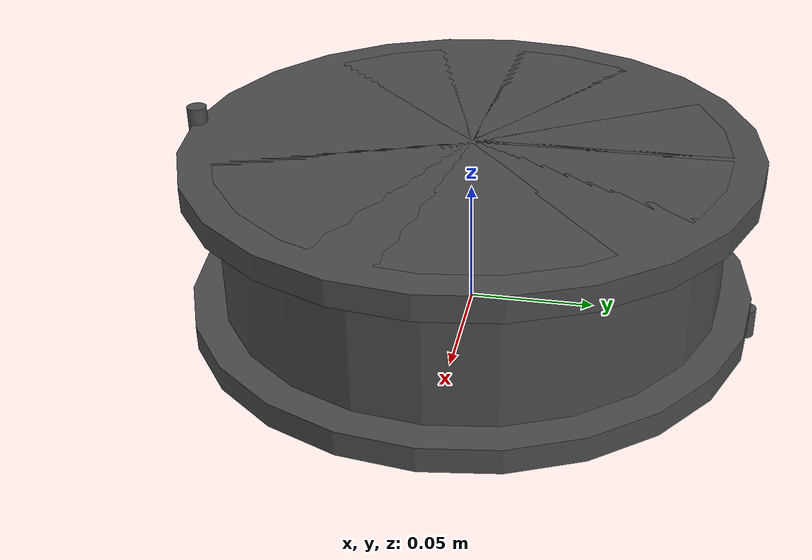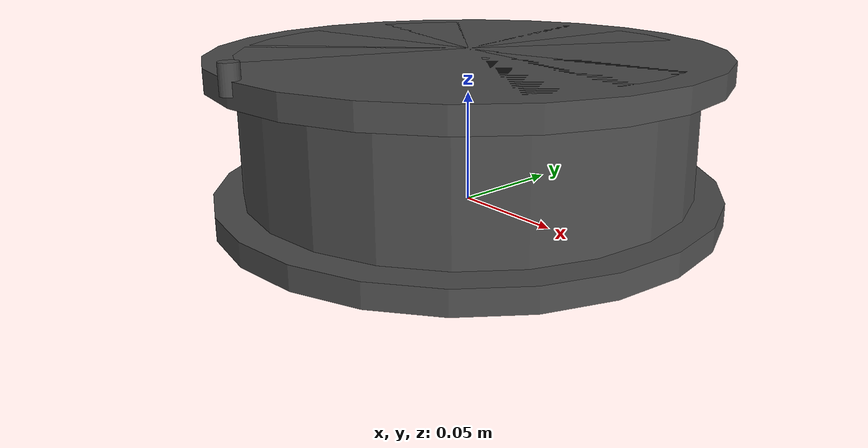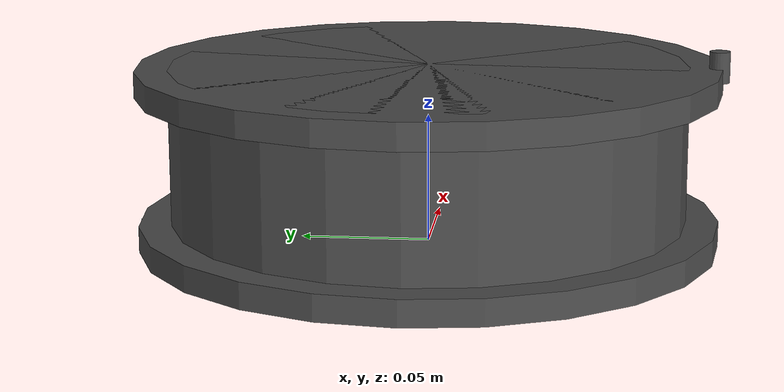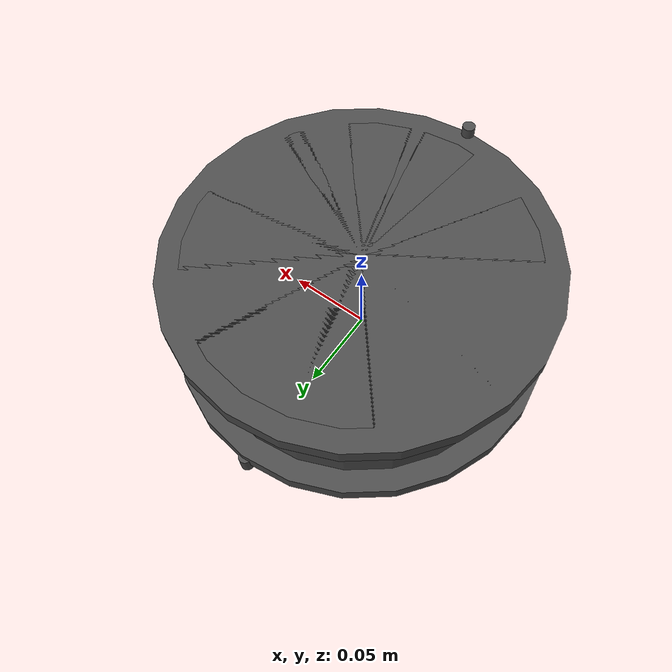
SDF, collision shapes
<?xml version="1.0" ?>
<sdf version="1.6">
  <model name="pulley_part_ariac">
    <link name="link">
      <inertial>
        <pose>0 0 0.035145 0 0 0</pose>
        <mass>0.5</mass>
        <inertia>
          <ixx>0.00191581703</ixx>
          <ixy>0</ixy>
          <ixz>0</ixz>
          <iyy>0.00191581703</iyy>
          <iyz>0</iyz>
          <izz>0.0034199104</izz>
        </inertia>
      </inertial>

      <collision name="collision_asymmetric_mark_top">
        <pose>0 -0.111 0.0705 0 0 0</pose>
        <max_contacts>10</max_contacts>
         <geometry>
          <cylinder>
            <length>0.012</length>
            <radius>0.00392125</radius>
          </cylinder>
         </geometry>
        <surface>
          <contact>
            <ode>
              <max_vel>0.0</max_vel>
              <min_depth>0.001</min_depth>
            </ode>
          </contact>
        </surface>
      </collision>
      <visual name="visual_asymmetric_mark_top">
        <pose>0 -0.111 0.0705 0 0 0</pose>
         <geometry>
          <cylinder>
            <length>0.012</length>
            <radius>0.00392125</radius>
          </cylinder>
         </geometry>
        <material>
          <lighting>1</lighting>
          <script>
            <uri>file://media/materials/scripts/gazebo.material</uri>
            <name>Gazebo/DarkGrey</name>
          </script>
          <emissive>0 0 0 1</emissive>
        </material>
      </visual>

      <collision name="collision_asymmetric_mark_bottom">
        <pose>0 0.111 -0.0005 0 0 0</pose>
        <max_contacts>10</max_contacts>
         <geometry>
          <cylinder>
            <length>0.012</length>
            <radius>0.00392125</radius>
          </cylinder>
         </geometry>
        <surface>
          <contact>
            <ode>
              <max_vel>0.0</max_vel>
              <min_depth>0.001</min_depth>
            </ode>
          </contact>
        </surface>
      </collision>
      <visual name="visual_asymmetric_mark_bottom">
        <pose>0 0.111 -0.0005 0 0 0</pose>
         <geometry>
          <cylinder>
            <length>0.012</length>
            <radius>0.00392125</radius>
          </cylinder>
         </geometry>
        <material>
          <lighting>1</lighting>
          <script>
            <uri>file://media/materials/scripts/gazebo.material</uri>
            <name>Gazebo/DarkGrey</name>
          </script>
          <emissive>0 0 0 1</emissive>
        </material>
      </visual>

      <!-- Top collision -->
      <collision name="collision_top">
        <pose>0 0 0.065 0 0 0</pose>
        <geometry>
          <cylinder>
            <length>0.01</length>
            <radius>0.1125</radius>
          </cylinder>
        </geometry>
        <surface>
          <contact>
            <ode>
              <max_vel>0.0</max_vel>
              <min_depth>0.001</min_depth>
            </ode>
          </contact>
        </surface>
      </collision>

      <!-- Botton collision -->
      <collision name="collision_bottom">
        <pose>0 0 0.005 0 0 0</pose>
        <geometry>
          <cylinder>
            <length>0.01</length>
            <radius>0.1125</radius>
          </cylinder>
        </geometry>
        <surface>
          <contact>
            <ode>
              <max_vel>0.0</max_vel>
              <min_depth>0.001</min_depth>
            </ode>
          </contact>
        </surface>
      </collision>

      <!-- Core collision -->
      <collision name="collision_core">
        <pose>0 0 0.035 0 0 0</pose>
        <geometry>
          <cylinder>
            <length>0.07</length>
            <radius>0.1</radius>
          </cylinder>
        </geometry>
        <surface>
          <contact>
            <ode>
              <max_vel>0.0</max_vel>
              <min_depth>0.001</min_depth>
            </ode>
          </contact>
        </surface>
      </collision>

      <visual name="visual">
        <geometry>
          <mesh>
            <uri>model://pulley_part_ariac/meshes/pulley.dae</uri>
          </mesh>
        </geometry>
        <material>
          <script>
            <uri>model://arm_part_ariac/materials/scripts</uri>
            <uri>model://arm_part_ariac/materials/textures</uri>
            <name>ArmPart/Diffuse</name>
          </script>
        </material>
       </visual>
    </link>
  </model>
</sdf>
